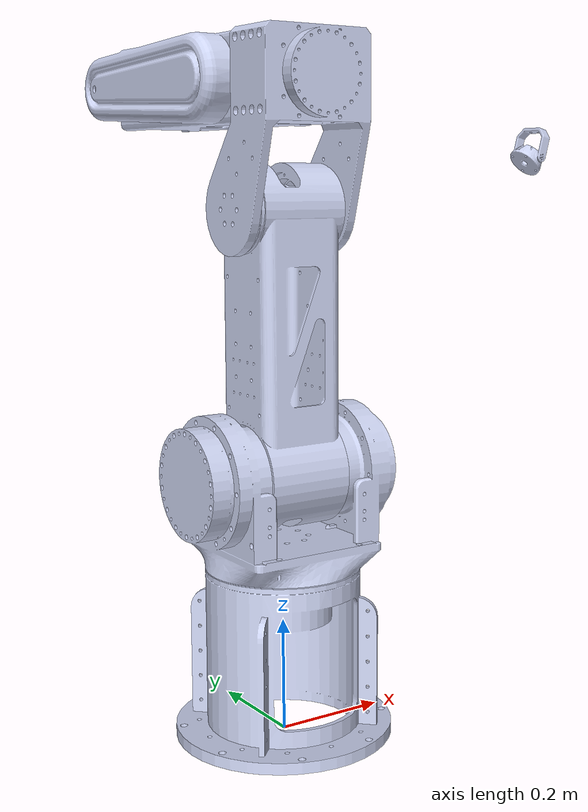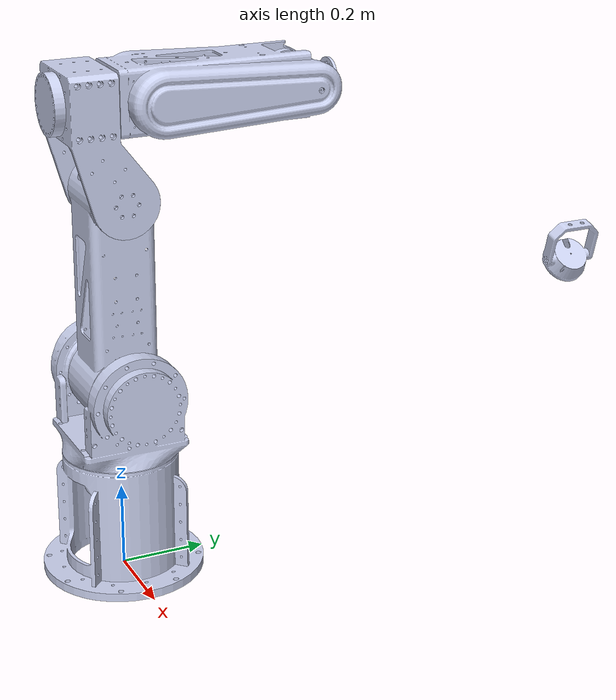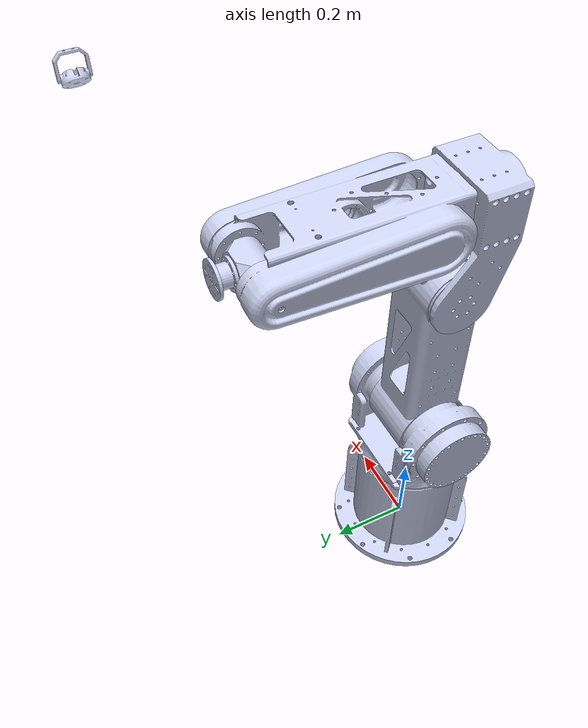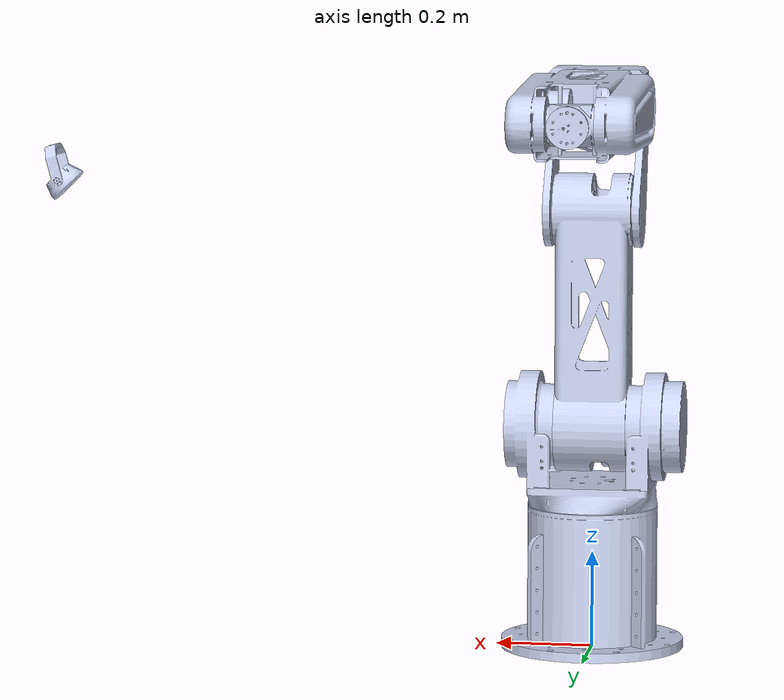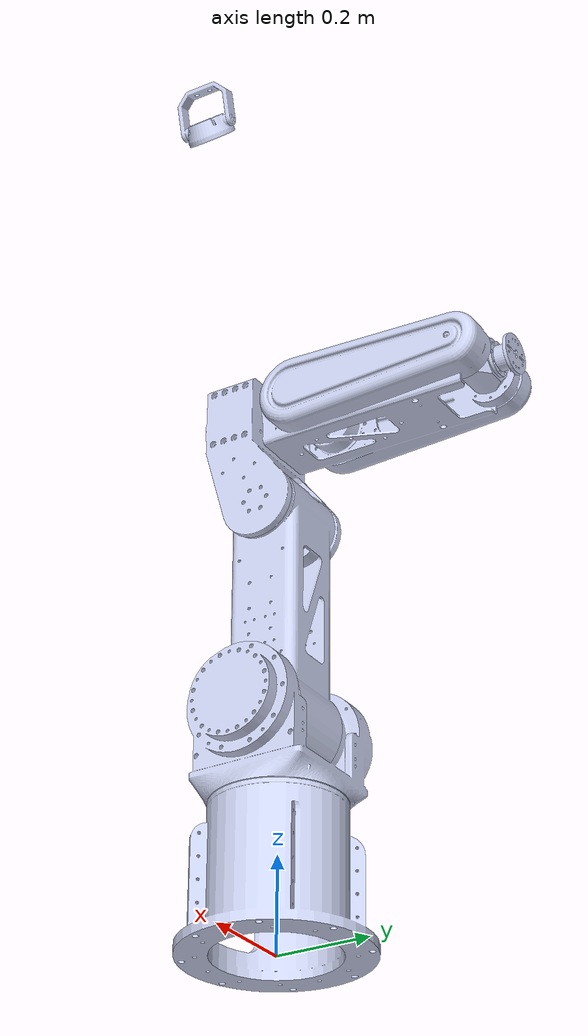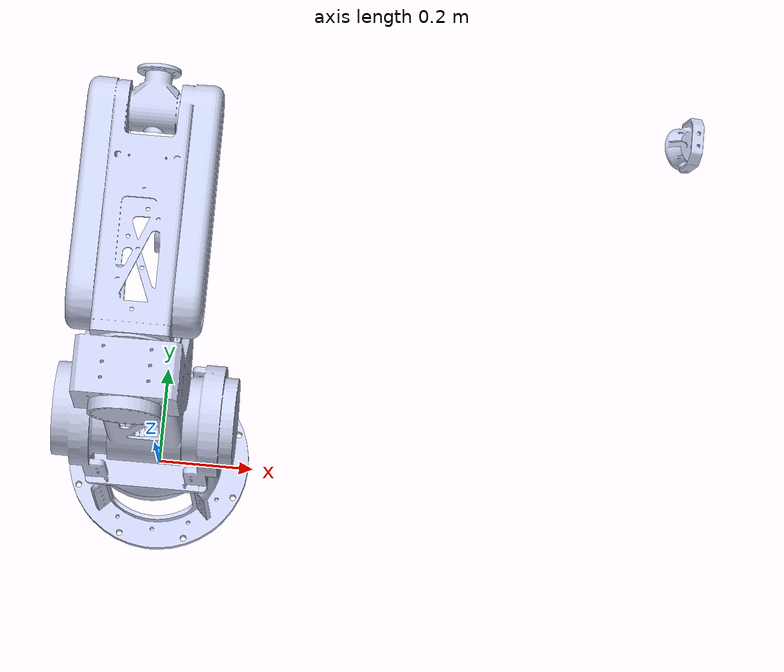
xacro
<?xml version="1.0"?>

<robot name = "proto3" xmlns:xacro="http://www.ros.org/wiki/xacro">
    <xacro:include filename="$(find proto3_description)/urdf/proto3_gazebo.xacro" />
    <xacro:include filename="$(find proto3_description)/urdf/proto3_ros2_control.xacro"/>

    <xacro:property name = "PI" value = "3.1416"/>
    <link name = "world"/>

    <joint name="world_to_l0" type="fixed">
        <parent link="world"/>
        <child link="L0"/>
        <origin xyz="0 0 0" rpy="0 0 0"/>
    </joint>

    <!-- Camera link with adjusted position -->
    <link name="camera">
    <visual>
        <origin xyz="-0.0471 -0.0859 -0.0397" rpy="0 0 0"/>
        <geometry>
        <mesh filename="package://proto3_description/meshes/camera.STL" scale="0.001 0.001 0.001"/>
        </geometry>
        <material name="Mild Steel">
        <color rgba="0.79216 0.81961 0.93333 1"/>
        </material>
    </visual>
    <collision>
        <origin xyz="-0.0471 -0.0859 -0.0397" rpy="0 0 0"/>
        <geometry>
        <mesh filename="package://proto3_description/meshes/camera.STL" scale="0.001 0.001 0.001"/>
        </geometry>
    </collision>
    <inertial>
        <mass value="0.1"/>
        <inertia ixx="0.001" ixy="0" ixz="0" iyy="0.001" iyz="0" izz="0.001"/>
    </inertial>
    </link>

    <joint name="camera_joint" type="fixed">
    <parent link="world"/>  <!-- Change this to the appropriate parent link -->
    <child link="camera"/>
    <!-- Adjust these values to position the camera correctly on your robot -->
    <origin xyz="1 0.5 1" rpy="${-PI/4} 0 ${PI/2}"/>
    </joint>

    <!-- Camera optical frame -->
    <link name="camera_optical_frame">
    <inertial>
        <mass value="0.001"/>
        <inertia ixx="0.0001" ixy="0" ixz="0" iyy="0.0001" iyz="0" izz="0.0001"/>
    </inertial>
    </link>

    <!-- Joint from camera to camera optical frame -->
    <joint name="camera_optical_joint" type="fixed">
    <parent link="camera"/>
    <child link="camera_optical_frame"/>
    <!-- This rotation aligns the optical frame correctly so Z is the optical axis -->
    <!-- Based on your screenshot, you want the green axis (Y in standard ROS frames) to be the optical axis -->
    <origin xyz="0 0 0" rpy="${-PI/2} 0 ${-PI/2}"/>
    </joint>

    <link name="L0">
        <inertial>
        <origin xyz="0 0.0079001 0.16566" rpy="0 0 0" />
        <mass value="4.9171" />

        <inertia
            ixx="0.047585"
            ixy="3.753E-06"
            ixz="-3.3031E-06"
            iyy="0.052491"
            iyz="-3.8946E-05"
            izz="0.073326" />
        </inertial>

        <visual>
            <origin xyz="0 0 0" rpy="0 0 0" />
            <geometry>
                <mesh filename="package://proto3_description/meshes/L0.STL" />
            </geometry>
            <material name="Mild Steel">
                <color rgba="0.79216 0.81961 0.93333 1" />
            </material>
        </visual>

        <collision>
            <origin xyz="0 0 0" rpy="0 0 0" />
            <geometry>
                <mesh filename="package://proto3_description/meshes/L0.STL" />
            </geometry>
        </collision>
    </link>

    <joint name="J01" type="revolute">
        <origin xyz="0 0 0.252" rpy="${PI/2} 0 ${PI}" />
        <parent link="L0" />
        <child link="L1" />
        <axis xyz="0 1 0" />

        <limit
            lower="${-PI}"
            upper="${PI}"
            effort="238"
            velocity="3.1415" />

    </joint>

    <link name="L1">
        <inertial>
            <origin xyz="0.0060396 0.17595 0" rpy="0 0 0" />
            <mass value="8.9408" />
            <inertia
                ixx="0.047293"
                ixy="-6.6381E-06"
                ixz="1.5788E-05"
                iyy="0.044741"
                iyz="-3.0638E-08"
                izz="0.034665" />
        </inertial>

        <visual>
            <origin xyz="0 0 0" rpy="0 0 0" />

            <geometry>
                <mesh filename="package://proto3_description/meshes/L1.STL" />
            </geometry>

            <material name="Mild Steel">
                <color rgba="0.79216 0.81961 0.93333 1" />
            </material>

        </visual>

        <collision>

            <origin xyz="0 0 0" rpy="0 0 0" />

            <geometry>
                <mesh filename="package://proto3_description/meshes/L1.STL" />
            </geometry>

        </collision>

    </link>

    <joint name="J12" type="revolute">

        <origin xyz="0 0.214 0" rpy="3.1416 0 3.1416" />

        <parent link="L1" />
        <child link="L2" />

        <axis xyz="-1 0 0" />
        <limit
            lower="${-1*PI/2}"
            upper="${PI/2}"
            effort="1145"
            velocity="3.1417" />

    </joint>

    <link name="L2">
        <inertial>
        <origin xyz="0.014107 0.21491 0.00023161" rpy="0 0 0" />

        <mass value="26.303" />

        <inertia
            ixx="0.15254"
            ixy="1.2724E-05"
            ixz="2.5354E-05"
            iyy="0.092042"
            iyz="-7.5375E-06"
            izz="0.14678" />
        </inertial>

        <visual>
        <origin xyz="0 0 0" rpy="0 0 0" />

        <geometry>
            <mesh filename="package://proto3_description/meshes/L2.STL" />
        </geometry>

        <material name="Mild Steel">
            <color rgba="0.79216 0.81961 0.93333 1" />
        </material>
        </visual>

        <collision>
        <origin xyz="0 0 0" rpy="0 0 0" />

        <geometry>
            <mesh filename="package://proto3_description/meshes/L2.STL" />
        </geometry>

        </collision>
    </link>

    <joint name="J23" type="revolute">

        <origin xyz="0 0.45 0" rpy="-1.5708 0 0" />
        <parent link="L2" />
        <child link="L3" />
        <axis xyz="1 0 0" />

        <limit
        lower="${-1* PI/2}"
        upper="${PI/2}"
        effort="459"
        velocity="3.14" />

    </joint>

    <link name="L3">
        <inertial>
        <origin xyz="0.00083915 -0.055853 0.15446" rpy="0 0 0" />
        <mass value="4.3153" />

        <inertia
            ixx="0.025988"
            ixy="6.1299E-07"
            ixz="-8.1067E-18"
            iyy="0.02556"
            iyz="0.0039698"
            izz="0.0097655" />
        </inertial>

        <visual>
            <origin xyz="0 0 0" rpy="0 0 0" />

            <geometry>
                <mesh filename="package://proto3_description/meshes/L3.STL" />
            </geometry>

            <material name="Mild Steel">
                <color rgba="0.79216 0.81961 0.93333 1" />
            </material>
        </visual>

        <collision>
            <origin xyz="0 0 0" rpy="0 0 0" />
            <geometry>
                <mesh filename="package://proto3_description/meshes/L3.STL" />
            </geometry>
        </collision>
    </link>

    <joint name="J34" type="revolute">
        <origin xyz="0 0 0.215" rpy="0 -1.5708 0" />
        <parent link="L3" />
        <child link="L4" />
        <axis xyz="0 1 0" />

        <limit
        lower="${-1*PI}"
        upper="${PI}"
        effort="127"
        velocity="3.14" />

    </joint>

    <link name="L4">
        <inertial>

        <origin xyz="0 0.20715 0" rpy="0 0 0" />
        <mass value="3.7365" />

        <inertia
            ixx="0.044096"
            ixy="-2.0295E-06"
            ixz="-1.114E-06"
            iyy="0.012077"
            iyz="-5.9426E-06"
            izz="0.047271" />
        </inertial>

        <visual>
        <origin xyz="0 0 0" rpy="0 0 0" />

        <geometry>
            <mesh filename="package://proto3_description/meshes/L4.STL" />
        </geometry>

        <material name="Mild Steel">
            <color rgba="0.79216 0.81961 0.93333 1" />
        </material>

        </visual>

        <collision>
        <origin xyz="0 0 0" rpy="0 0 0" />
        <geometry>
            <mesh filename="package://proto3_description/meshes/L4.STL" />
        </geometry>
        </collision>
    </link>

    <joint name="J45" type="revolute">
        <origin xyz="0 0.45 0" rpy="0 0 0" />
        <parent link="L4" />
        <child link="L5" />
        <axis xyz="0 0 1" />
        <limit
            lower="-${PI/2}"
            upper="${PI/2}"
            effort="120"
            velocity="3.14" />
    </joint>

    <link name="L5">
        <inertial>
        <origin xyz="0 0.0086302 0" rpy="0 0 0" />
        <mass value="0.48612" />

        <inertia
            ixx="0.00045949"
            ixy="-2.7389E-09"
            ixz="-5.3792E-10"
            iyy="0.00053278"
            iyz="1.2289E-07"
            izz="0.00042861" />
        </inertial>

        <visual>
            <origin xyz="0 0 0" rpy="0 0 0" />
            <geometry>
                <mesh filename="package://proto3_description/meshes/L5.STL" />
            </geometry>

            <material name="Mild Steel">
                <color rgba="0.79216 0.81961 0.93333 1" />
            </material>
        </visual>

        <collision>
            <origin xyz="0 0 0" rpy="0 0 0" />
            <geometry>
                <mesh filename="package://proto3_description/meshes/L5.STL" />
            </geometry>
        </collision>
    </link>

    <joint name="J56" type="revolute">
        <origin xyz="0 0.0071 0" rpy="0 0 0" />
        <parent link="L5" />
        <child link="L6" />
        <axis xyz="0 -1 0" />
        <limit
            lower="-${PI}"
            upper="${PI}"
            effort="120"
            velocity="3.14" />
    </joint>

    <link name="L6">
        <inertial>
        <origin xyz="0 0.060013 0" rpy="0 0 0" />
        <mass value="0.44036" />

        <inertia
            ixx="0.00015681"
            ixy="5.0039E-20"
            ixz="2.2321E-21"
            iyy="0.00026506"
            iyz="-3.0357E-08"
            izz="0.00015747" />
        </inertial>

        <visual>
        <origin xyz="0 0 0" rpy="0 0 0" />
        <geometry>
            <mesh filename="package://proto3_description/meshes/L6.STL" />
        </geometry>
        <material name="Mild Steel">
            <color rgba="0.79216 0.81961 0.93333 1" />
        </material>
        </visual>

        <collision>
        <origin xyz="0 0 0" rpy="0 0 0" />
        <geometry>
            <mesh filename="package://proto3_description/meshes/L6.STL" />
        </geometry>
        </collision>
    </link>

</robot>
